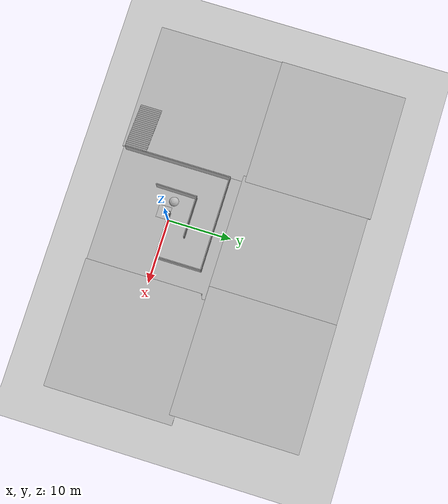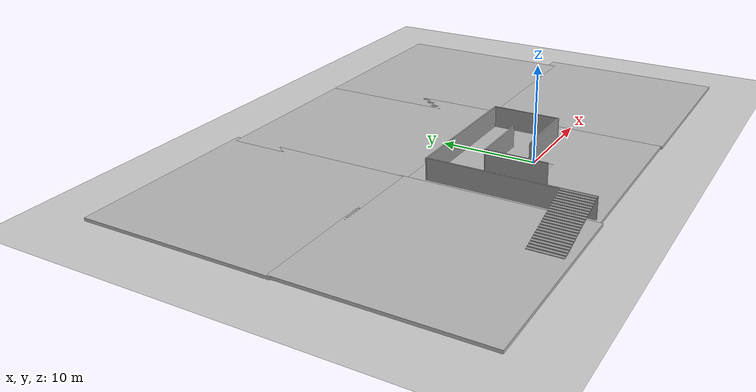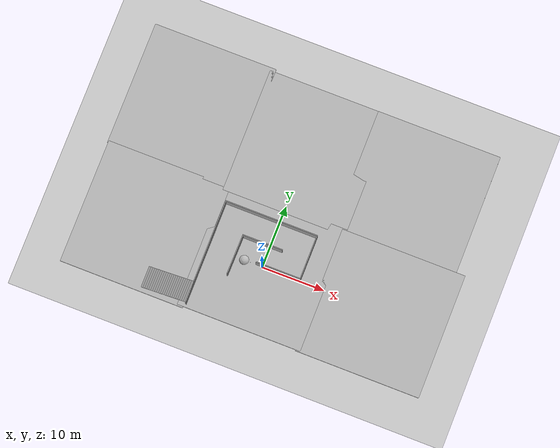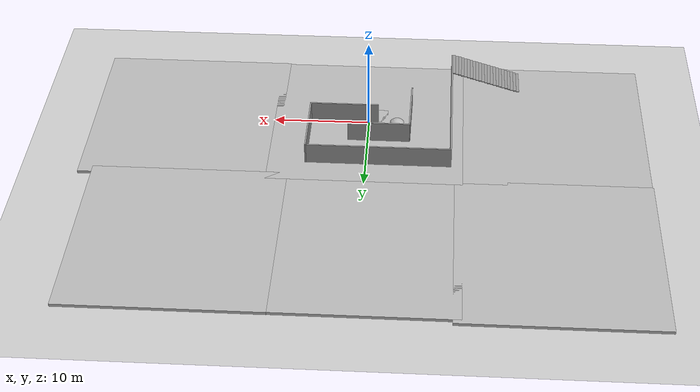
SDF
<sdf version="1.6">
 <world name="default">
  <model name="ground_plane">
   <static>1</static>
   <link name="link">
    <collision name="collision">
     <geometry><plane><normal>0 0 1</normal><size>100 100</size></plane></geometry>
     <surface><friction><ode><mu>100</mu><mu2>50</mu2></ode></friction></surface>
    </collision>
    <visual name="visual">
     <cast_shadows>0</cast_shadows>
     <geometry><plane><normal>0 0 1</normal><size>100 100</size></plane></geometry>
     <material>
      <script><uri>file://media/materials/scripts/gazebo.material</uri><name>Gazebo/Grey</name></script>
     </material>
    </visual>
   </link>
  </model>
  <model name="box">
   <static>1</static>
   <link name="box">
    <visual name="visual"><geometry><box><size>20 20 0.5</size></box></geometry></visual>
    <collision name="visual">
     <geometry><box><size>20 20 0.5</size></box></geometry>
     <surface><friction><ode><mu>0.2</mu><mu2>0.2</mu2></ode></friction></surface>
    </collision>
   </link>
  </model>
  <model name="box2">
   <static>1</static>
   <pose>-1 -1 0 0 -0 0</pose>
   <link name="box2">
    <visual name="visual2"><geometry><box><size>2 2 0.5</size></box></geometry></visual>
    <collision name="visual2"><geometry><box><size>2 2 0.5</size></box></geometry></collision>
   </link>
  </model>
  <model name="sph">
   <static>1</static>
   <pose>-3 0 -0.4 0 -0 0</pose>
   <link name="box2">
    <visual name="visual2"><geometry><sphere><radius>1</radius></sphere></geometry></visual>
    <collision name="visual2"><geometry><sphere><radius>1</radius></sphere></geometry></collision>
   </link>
  </model>
  <model name="box_clone">
   <static>1</static>
   <pose>-19.0505 -0.235094 0 0 -0 0</pose>
   <link name="box">
    <visual name="visual"><geometry><box><size>20 20 0.5</size></box></geometry></visual>
    <collision name="visual">
     <geometry><box><size>20 20 0.5</size></box></geometry>
     <surface><friction><ode><mu>0.2</mu><mu2>0.2</mu2></ode></friction></surface>
    </collision>
   </link>
  </model>
  <model name="box_clone_0">
   <static>1</static>
   <pose>-19.1652 19.4103 0 0 -0 0</pose>
   <link name="box">
    <visual name="visual"><geometry><box><size>20 20 0.5</size></box></geometry></visual>
    <collision name="visual">
     <geometry><box><size>20 20 0.5</size></box></geometry>
     <surface><friction><ode><mu>0.2</mu><mu2>0.2</mu2></ode></friction></surface>
    </collision>
   </link>
  </model>
  <model name="box_clone_1">
   <static>1</static>
   <pose>-0.009698 18.9587 0 0 -0 0</pose>
   <link name="box">
    <visual name="visual"><geometry><box><size>20 20 0.5</size></box></geometry></visual>
    <collision name="visual">
     <geometry><box><size>20 20 0.5</size></box></geometry>
     <surface><friction><ode><mu>0.2</mu><mu2>0.2</mu2></ode></friction></surface>
    </collision>
   </link>
  </model>
  <model name="box_clone_2">
   <static>1</static>
   <pose>17.7917 18.98 0 0 -0 0</pose>
   <link name="box">
    <visual name="visual"><geometry><box><size>20 20 0.5</size></box></geometry></visual>
    <collision name="visual">
     <geometry><box><size>20 20 0.5</size></box></geometry>
     <surface><friction><ode><mu>0.2</mu><mu2>0.2</mu2></ode></friction></surface>
    </collision>
   </link>
  </model>
  <model name="box_clone_3">
   <static>1</static>
   <pose>19.2214 -0.144455 0 0 -0 0</pose>
   <link name="box">
    <visual name="visual"><geometry><box><size>20 20 0.5</size></box></geometry></visual>
    <collision name="visual">
     <geometry><box><size>20 20 0.5</size></box></geometry>
     <surface><friction><ode><mu>0.2</mu><mu2>0.2</mu2></ode></friction></surface>
    </collision>
   </link>
  </model>
  <model name="Ramp">
   <pose>-3.77089 -1.15955 0 0 -0 0</pose>
   <link name="Stairs_5">
    <visual name="Stairs_5_Visual_0">
     <pose>-12.8006 -6.66524 0.05 0 -0 1.5708</pose>
     <geometry><box><size>3.41 0.3184 0.1</size></box></geometry>
     <material>
      <script><uri>file://media/materials/scripts/gazebo.material</uri><name>Gazebo/Grey</name></script>
      <ambient>1 1 1 1</ambient>
     </material>
    </visual>
    <collision name="Stairs_5_Collision_0">
     <geometry><box><size>3.41 0.3184 0.1</size></box></geometry>
     <pose>-12.8006 -6.66524 0.05 0 -0 1.5708</pose>
    </collision>
    <visual name="Stairs_5_Visual_1">
     <pose>-12.4822 -6.66524 0.15 0 -0 1.5708</pose>
     <geometry><box><size>3.41 0.3184 0.1</size></box></geometry>
     <material>
      <script><uri>file://media/materials/scripts/gazebo.material</uri><name>Gazebo/Grey</name></script>
      <ambient>1 1 1 1</ambient>
     </material>
    </visual>
    <collision name="Stairs_5_Collision_1">
     <geometry><box><size>3.41 0.3184 0.1</size></box></geometry>
     <pose>-12.4822 -6.66524 0.15 0 -0 1.5708</pose>
    </collision>
    <visual name="Stairs_5_Visual_2">
     <pose>-12.1638 -6.66524 0.25 0 -0 1.5708</pose>
     <geometry><box><size>3.41 0.3184 0.1</size></box></geometry>
     <material>
      <script><uri>file://media/materials/scripts/gazebo.material</uri><name>Gazebo/Grey</name></script>
      <ambient>1 1 1 1</ambient>
     </material>
    </visual>
    <collision name="Stairs_5_Collision_2">
     <geometry><box><size>3.41 0.3184 0.1</size></box></geometry>
     <pose>-12.1638 -6.66524 0.25 0 -0 1.5708</pose>
    </collision>
    <visual name="Stairs_5_Visual_3">
     <pose>-11.8454 -6.66524 0.35 0 -0 1.5708</pose>
     <geometry><box><size>3.41 0.3184 0.1</size></box></geometry>
     <material>
      <script><uri>file://media/materials/scripts/gazebo.material</uri><name>Gazebo/Grey</name></script>
      <ambient>1 1 1 1</ambient>
     </material>
    </visual>
    <collision name="Stairs_5_Collision_3">
     <geometry><box><size>3.41 0.3184 0.1</size></box></geometry>
     <pose>-11.8454 -6.66524 0.35 0 -0 1.5708</pose>
    </collision>
    <visual name="Stairs_5_Visual_4">
     <pose>-11.527 -6.66524 0.45 0 -0 1.5708</pose>
     <geometry><box><size>3.41 0.3184 0.1</size></box></geometry>
     <material>
      <script><uri>file://media/materials/scripts/gazebo.material</uri><name>Gazebo/Grey</name></script>
      <ambient>1 1 1 1</ambient>
     </material>
    </visual>
    <collision name="Stairs_5_Collision_4">
     <geometry><box><size>3.41 0.3184 0.1</size></box></geometry>
     <pose>-11.527 -6.66524 0.45 0 -0 1.5708</pose>
    </collision>
    <visual name="Stairs_5_Visual_5">
     <pose>-11.2086 -6.66524 0.55 0 -0 1.5708</pose>
     <geometry><box><size>3.41 0.3184 0.1</size></box></geometry>
     <material>
      <script><uri>file://media/materials/scripts/gazebo.material</uri><name>Gazebo/Grey</name></script>
      <ambient>1 1 1 1</ambient>
     </material>
    </visual>
    <collision name="Stairs_5_Collision_5">
     <geometry><box><size>3.41 0.3184 0.1</size></box></geometry>
     <pose>-11.2086 -6.66524 0.55 0 -0 1.5708</pose>
    </collision>
    <visual name="Stairs_5_Visual_6">
     <pose>-10.8902 -6.66524 0.65 0 -0 1.5708</pose>
     <geometry><box><size>3.41 0.3184 0.1</size></box></geometry>
     <material>
      <script><uri>file://media/materials/scripts/gazebo.material</uri><name>Gazebo/Grey</name></script>
      <ambient>1 1 1 1</ambient>
     </material>
    </visual>
    <collision name="Stairs_5_Collision_6">
     <geometry><box><size>3.41 0.3184 0.1</size></box></geometry>
     <pose>-10.8902 -6.66524 0.65 0 -0 1.5708</pose>
    </collision>
    <visual name="Stairs_5_Visual_7">
     <pose>-10.5718 -6.66524 0.75 0 -0 1.5708</pose>
     <geometry><box><size>3.41 0.3184 0.1</size></box></geometry>
     <material>
      <script><uri>file://media/materials/scripts/gazebo.material</uri><name>Gazebo/Grey</name></script>
      <ambient>1 1 1 1</ambient>
     </material>
    </visual>
    <collision name="Stairs_5_Collision_7">
     <geometry><box><size>3.41 0.3184 0.1</size></box></geometry>
     <pose>-10.5718 -6.66524 0.75 0 -0 1.5708</pose>
    </collision>
    <visual name="Stairs_5_Visual_8">
     <pose>-10.2534 -6.66524 0.85 0 -0 1.5708</pose>
     <geometry><box><size>3.41 0.3184 0.1</size></box></geometry>
     <material>
      <script><uri>file://media/materials/scripts/gazebo.material</uri><name>Gazebo/Grey</name></script>
      <ambient>1 1 1 1</ambient>
     </material>
    </visual>
    <collision name="Stairs_5_Collision_8">
     <geometry><box><size>3.41 0.3184 0.1</size></box></geometry>
     <pose>-10.2534 -6.66524 0.85 0 -0 1.5708</pose>
    </collision>
    <visual name="Stairs_5_Visual_9">
     <pose>-9.93503 -6.66524 0.95 0 -0 1.5708</pose>
     <geometry><box><size>3.41 0.3184 0.1</size></box></geometry>
     <material>
      <script><uri>file://media/materials/scripts/gazebo.material</uri><name>Gazebo/Grey</name></script>
      <ambient>1 1 1 1</ambient>
     </material>
    </visual>
    <collision name="Stairs_5_Collision_9">
     <geometry><box><size>3.41 0.3184 0.1</size></box></geometry>
     <pose>-9.93503 -6.66524 0.95 0 -0 1.5708</pose>
    </collision>
    <visual name="Stairs_5_Visual_10">
     <pose>-9.61663 -6.66524 1.05 0 -0 1.5708</pose>
     <geometry><box><size>3.41 0.3184 0.1</size></box></geometry>
     <material>
      <script><uri>file://media/materials/scripts/gazebo.material</uri><name>Gazebo/Grey</name></script>
      <ambient>1 1 1 1</ambient>
     </material>
    </visual>
    <collision name="Stairs_5_Collision_10">
     <geometry><box><size>3.41 0.3184 0.1</size></box></geometry>
     <pose>-9.61663 -6.66524 1.05 0 -0 1.5708</pose>
    </collision>
    <visual name="Stairs_5_Visual_11">
     <pose>-9.29823 -6.66524 1.15 0 -0 1.5708</pose>
     <geometry><box><size>3.41 0.3184 0.1</size></box></geometry>
     <material>
      <script><uri>file://media/materials/scripts/gazebo.material</uri><name>Gazebo/Grey</name></script>
      <ambient>1 1 1 1</ambient>
     </material>
    </visual>
    <collision name="Stairs_5_Collision_11">
     <geometry><box><size>3.41 0.3184 0.1</size></box></geometry>
     <pose>-9.29823 -6.66524 1.15 0 -0 1.5708</pose>
    </collision>
    <visual name="Stairs_5_Visual_12">
     <pose>-8.97983 -6.66524 1.25 0 -0 1.5708</pose>
     <geometry><box><size>3.41 0.3184 0.1</size></box></geometry>
     <material>
      <script><uri>file://media/materials/scripts/gazebo.material</uri><name>Gazebo/Grey</name></script>
      <ambient>1 1 1 1</ambient>
     </material>
    </visual>
    <collision name="Stairs_5_Collision_12">
     <geometry><box><size>3.41 0.3184 0.1</size></box></geometry>
     <pose>-8.97983 -6.66524 1.25 0 -0 1.5708</pose>
    </collision>
    <visual name="Stairs_5_Visual_13">
     <pose>-8.66143 -6.66524 1.35 0 -0 1.5708</pose>
     <geometry><box><size>3.41 0.3184 0.1</size></box></geometry>
     <material>
      <script><uri>file://media/materials/scripts/gazebo.material</uri><name>Gazebo/Grey</name></script>
      <ambient>1 1 1 1</ambient>
     </material>
    </visual>
    <collision name="Stairs_5_Collision_13">
     <geometry><box><size>3.41 0.3184 0.1</size></box></geometry>
     <pose>-8.66143 -6.66524 1.35 0 -0 1.5708</pose>
    </collision>
    <visual name="Stairs_5_Visual_14">
     <pose>-8.34303 -6.66524 1.45 0 -0 1.5708</pose>
     <geometry><box><size>3.41 0.3184 0.1</size></box></geometry>
     <material>
      <script><uri>file://media/materials/scripts/gazebo.material</uri><name>Gazebo/Grey</name></script>
      <ambient>1 1 1 1</ambient>
     </material>
    </visual>
    <collision name="Stairs_5_Collision_14">
     <geometry><box><size>3.41 0.3184 0.1</size></box></geometry>
     <pose>-8.34303 -6.66524 1.45 0 -0 1.5708</pose>
    </collision>
    <visual name="Stairs_5_Visual_15">
     <pose>-8.02463 -6.66524 1.55 0 -0 1.5708</pose>
     <geometry><box><size>3.41 0.3184 0.1</size></box></geometry>
     <material>
      <script><uri>file://media/materials/scripts/gazebo.material</uri><name>Gazebo/Grey</name></script>
      <ambient>1 1 1 1</ambient>
     </material>
    </visual>
    <collision name="Stairs_5_Collision_15">
     <geometry><box><size>3.41 0.3184 0.1</size></box></geometry>
     <pose>-8.02463 -6.66524 1.55 0 -0 1.5708</pose>
    </collision>
    <visual name="Stairs_5_Visual_16">
     <pose>-7.70623 -6.66524 1.65 0 -0 1.5708</pose>
     <geometry><box><size>3.41 0.3184 0.1</size></box></geometry>
     <material>
      <script><uri>file://media/materials/scripts/gazebo.material</uri><name>Gazebo/Grey</name></script>
      <ambient>1 1 1 1</ambient>
     </material>
    </visual>
    <collision name="Stairs_5_Collision_16">
     <geometry><box><size>3.41 0.3184 0.1</size></box></geometry>
     <pose>-7.70623 -6.66524 1.65 0 -0 1.5708</pose>
    </collision>
    <visual name="Stairs_5_Visual_17">
     <pose>-7.38783 -6.66524 1.75 0 -0 1.5708</pose>
     <geometry><box><size>3.41 0.3184 0.1</size></box></geometry>
     <material>
      <script><uri>file://media/materials/scripts/gazebo.material</uri><name>Gazebo/Grey</name></script>
      <ambient>1 1 1 1</ambient>
     </material>
    </visual>
    <collision name="Stairs_5_Collision_17">
     <geometry><box><size>3.41 0.3184 0.1</size></box></geometry>
     <pose>-7.38783 -6.66524 1.75 0 -0 1.5708</pose>
    </collision>
    <visual name="Stairs_5_Visual_18">
     <pose>-7.06943 -6.66524 1.85 0 -0 1.5708</pose>
     <geometry><box><size>3.41 0.3184 0.1</size></box></geometry>
     <material>
      <script><uri>file://media/materials/scripts/gazebo.material</uri><name>Gazebo/Grey</name></script>
      <ambient>1 1 1 1</ambient>
     </material>
    </visual>
    <collision name="Stairs_5_Collision_18">
     <geometry><box><size>3.41 0.3184 0.1</size></box></geometry>
     <pose>-7.06943 -6.66524 1.85 0 -0 1.5708</pose>
    </collision>
    <visual name="Stairs_5_Visual_19">
     <pose>-6.75103 -6.66524 1.95 0 -0 1.5708</pose>
     <geometry><box><size>3.41 0.3184 0.1</size></box></geometry>
     <material>
      <script><uri>file://media/materials/scripts/gazebo.material</uri><name>Gazebo/Grey</name></script>
      <ambient>1 1 1 1</ambient>
     </material>
    </visual>
    <collision name="Stairs_5_Collision_19">
     <geometry><box><size>3.41 0.3184 0.1</size></box></geometry>
     <pose>-6.75103 -6.66524 1.95 0 -0 1.5708</pose>
    </collision>
    <visual name="Stairs_5_Visual_20">
     <pose>-6.43263 -6.66524 2.05 0 -0 1.5708</pose>
     <geometry><box><size>3.41 0.3184 0.1</size></box></geometry>
     <material>
      <script><uri>file://media/materials/scripts/gazebo.material</uri><name>Gazebo/Grey</name></script>
      <ambient>1 1 1 1</ambient>
     </material>
    </visual>
    <collision name="Stairs_5_Collision_20">
     <geometry><box><size>3.41 0.3184 0.1</size></box></geometry>
     <pose>-6.43263 -6.66524 2.05 0 -0 1.5708</pose>
    </collision>
    <visual name="Stairs_5_Visual_21">
     <pose>-6.11423 -6.66524 2.15 0 -0 1.5708</pose>
     <geometry><box><size>3.41 0.3184 0.1</size></box></geometry>
     <material>
      <script><uri>file://media/materials/scripts/gazebo.material</uri><name>Gazebo/Grey</name></script>
      <ambient>1 1 1 1</ambient>
     </material>
    </visual>
    <collision name="Stairs_5_Collision_21">
     <geometry><box><size>3.41 0.3184 0.1</size></box></geometry>
     <pose>-6.11423 -6.66524 2.15 0 -0 1.5708</pose>
    </collision>
    <visual name="Stairs_5_Visual_22">
     <pose>-5.79583 -6.66524 2.25 0 -0 1.5708</pose>
     <geometry><box><size>3.41 0.3184 0.1</size></box></geometry>
     <material>
      <script><uri>file://media/materials/scripts/gazebo.material</uri><name>Gazebo/Grey</name></script>
      <ambient>1 1 1 1</ambient>
     </material>
    </visual>
    <collision name="Stairs_5_Collision_22">
     <geometry><box><size>3.41 0.3184 0.1</size></box></geometry>
     <pose>-5.79583 -6.66524 2.25 0 -0 1.5708</pose>
    </collision>
    <visual name="Stairs_5_Visual_23">
     <pose>-5.47743 -6.66524 2.35 0 -0 1.5708</pose>
     <geometry><box><size>3.41 0.3184 0.1</size></box></geometry>
     <material>
      <script><uri>file://media/materials/scripts/gazebo.material</uri><name>Gazebo/Grey</name></script>
      <ambient>1 1 1 1</ambient>
     </material>
    </visual>
    <collision name="Stairs_5_Collision_23">
     <geometry><box><size>3.41 0.3184 0.1</size></box></geometry>
     <pose>-5.47743 -6.66524 2.35 0 -0 1.5708</pose>
    </collision>
    <visual name="Stairs_5_Visual_24">
     <pose>-5.15903 -6.66524 2.45 0 -0 1.5708</pose>
     <geometry><box><size>3.41 0.3184 0.1</size></box></geometry>
     <material>
      <script><uri>file://media/materials/scripts/gazebo.material</uri><name>Gazebo/Grey</name></script>
      <ambient>1 1 1 1</ambient>
     </material>
    </visual>
    <collision name="Stairs_5_Collision_24">
     <geometry><box><size>3.41 0.3184 0.1</size></box></geometry>
     <pose>-5.15903 -6.66524 2.45 0 -0 1.5708</pose>
    </collision>
   </link>
   <link name="Wall_1">
    <collision name="Wall_1_Collision">
     <geometry><box><size>6.5 0.15 2.5</size></box></geometry>
     <pose>0 0 1.25 0 -0 0</pose>
    </collision>
    <visual name="Wall_1_Visual">
     <pose>0 0 1.25 0 -0 0</pose>
     <geometry><box><size>6.5 0.15 2.5</size></box></geometry>
     <material>
      <script><uri>file://media/materials/scripts/gazebo.material</uri><name>Gazebo/Grey</name></script>
      <ambient>1 1 1 1</ambient>
     </material>
    </visual>
    <pose>-0.667284 1.17796 0 0 -0 1.55791</pose>
   </link>
   <link name="Wall_3">
    <collision name="Wall_3_Collision">
     <geometry><box><size>6.5 0.15 2.5</size></box></geometry>
     <pose>0 0 1.25 0 -0 0</pose>
    </collision>
    <visual name="Wall_3_Visual">
     <pose>0 0 1.25 0 -0 0</pose>
     <geometry><box><size>6.5 0.15 2.5</size></box></geometry>
     <material>
      <script><uri>file://media/materials/scripts/gazebo.material</uri><name>Gazebo/Grey</name></script>
      <ambient>1 1 1 1</ambient>
     </material>
    </visual>
    <pose>2.54863 4.35296 0 0 -0 0</pose>
   </link>
   <link name="Wall_5">
    <collision name="Wall_5_Collision">
     <geometry><box><size>7.25 0.15 2.5</size></box></geometry>
     <pose>0 0 1.25 0 -0 0</pose>
    </collision>
    <visual name="Wall_5_Visual">
     <pose>0 0 1.25 0 -0 0</pose>
     <geometry><box><size>7.25 0.15 2.5</size></box></geometry>
     <material>
      <script><uri>file://media/materials/scripts/gazebo.material</uri><name>Gazebo/Grey</name></script>
      <ambient>1 1 1 1</ambient>
     </material>
    </visual>
    <pose>6.33388 1.20035 0 0 -0 0</pose>
   </link>
   <link name="Wall_6">
    <collision name="Wall_6_Collision">
     <geometry><box><size>7.25 0.15 2.5</size></box></geometry>
     <pose>0 0 1.25 0 -0 0</pose>
    </collision>
    <visual name="Wall_6_Visual">
     <pose>0 0 1.25 0 -0 0</pose>
     <geometry><box><size>7.25 0.15 2.5</size></box></geometry>
     <material>
      <script><uri>file://media/materials/scripts/gazebo.material</uri><name>Gazebo/Grey</name></script>
      <ambient>1 1 1 1</ambient>
     </material>
    </visual>
    <pose>9.88388 4.75035 0 0 -0 1.5708</pose>
   </link>
   <link name="Wall_7">
    <collision name="Wall_7_Collision">
     <geometry><box><size>15 0.15 2.5</size></box></geometry>
     <pose>0 0 1.25 0 -0 0</pose>
    </collision>
    <visual name="Wall_7_Visual">
     <pose>0 0 1.25 0 -0 0</pose>
     <geometry><box><size>15 0.15 2.5</size></box></geometry>
     <material>
      <script><uri>file://media/materials/scripts/gazebo.material</uri><name>Gazebo/Grey</name></script>
      <ambient>1 1 1 1</ambient>
     </material>
    </visual>
    <pose>2.45888 8.30035 0 0 -0 3.14159</pose>
   </link>
   <link name="Wall_8">
    <collision name="Wall_8_Collision">
     <geometry><box><size>16.75 0.15 2.5</size></box></geometry>
     <pose>0 0 1.25 0 -0 0</pose>
    </collision>
    <visual name="Wall_8_Visual">
     <pose>0 0 1.25 0 -0 0</pose>
     <geometry><box><size>16.75 0.15 2.5</size></box></geometry>
     <material>
      <script><uri>file://media/materials/scripts/gazebo.material</uri><name>Gazebo/Grey</name></script>
      <ambient>1 1 1 1</ambient>
     </material>
    </visual>
    <pose>-4.96612 0.000348 0 0 0 -1.5708</pose>
   </link>
   <static>1</static>
  </model>
 </world>
</sdf>
